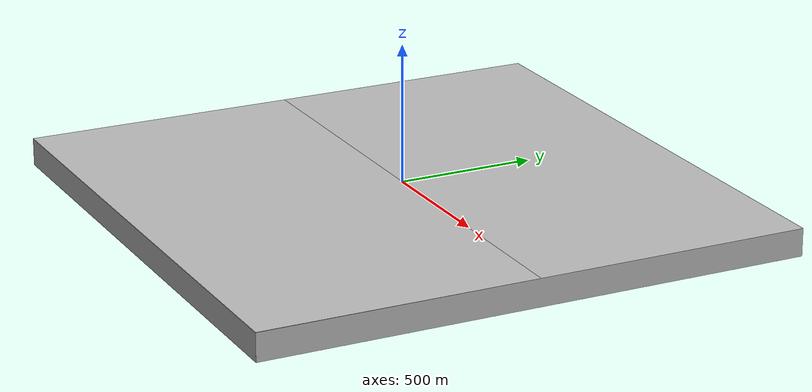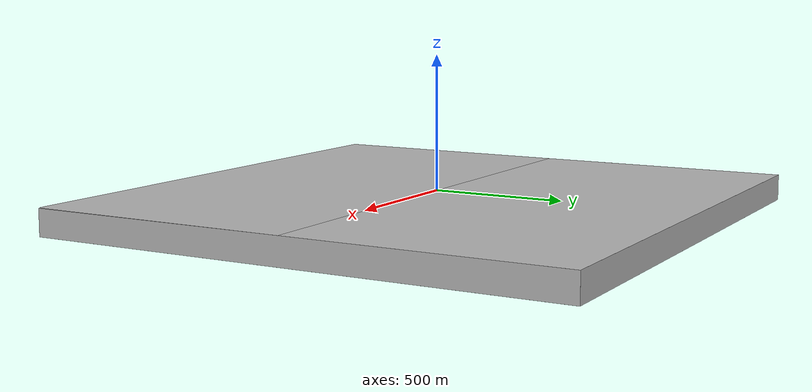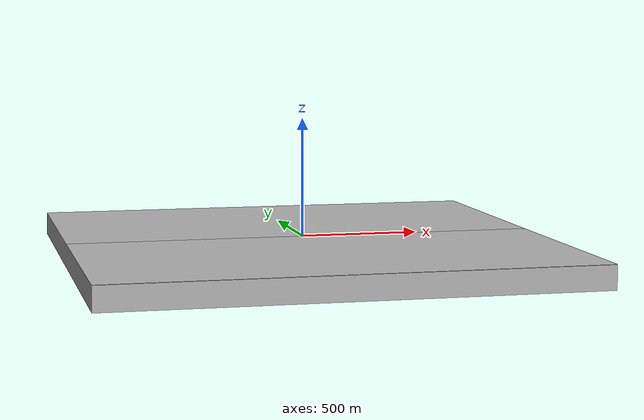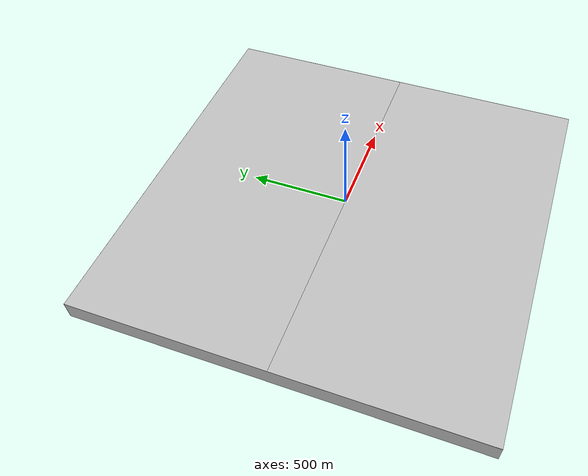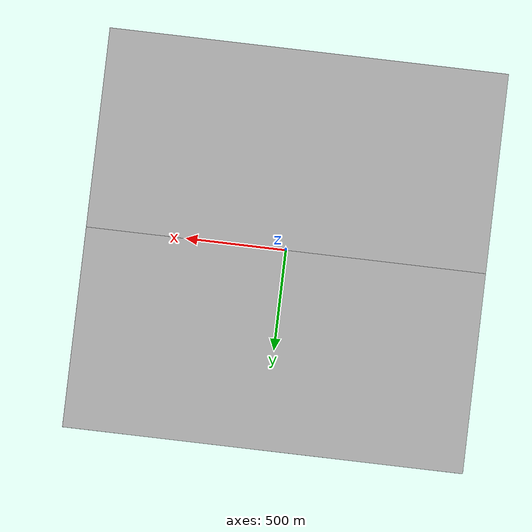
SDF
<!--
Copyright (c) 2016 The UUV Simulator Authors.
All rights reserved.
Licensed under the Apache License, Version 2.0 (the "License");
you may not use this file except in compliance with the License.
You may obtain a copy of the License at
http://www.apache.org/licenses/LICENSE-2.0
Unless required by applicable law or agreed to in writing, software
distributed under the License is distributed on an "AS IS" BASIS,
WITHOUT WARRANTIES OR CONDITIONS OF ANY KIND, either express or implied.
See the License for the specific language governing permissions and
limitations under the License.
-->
<?xml version="1.0" ?>
<sdf version="1.4">

<model name="ocean">
  <static>true</static>
  <link name="ocean_link">

  <visual name="ocean_surface">
    <pose>0 0 0 0 0 0</pose>
    <geometry>
      <mesh>
        <uri>file://Media/models/sea_surface_1000m_x_1000m.dae</uri>
        <scale>2 2 2</scale>
      </mesh>
    </geometry>
    <material>
      <script>
        <uri>file://Media/materials/scripts/waves.material</uri>
        <name>UUVSimulator/SimpleWaves</name>
      </script>
    </material>
  </visual>

  <visual name="ocean_below">
    <pose>0 0 0 3.14 0 0</pose>
    <geometry>
      <mesh>
        <uri>file://Media/models/sea_surface_1000m_x_1000m.dae</uri>
        <scale>2 2 2</scale>
      </mesh>
    </geometry>
    <material>
      <script>
        <uri>file://Media/materials/scripts/water.material</uri>
        <name>UUVSimulator/StaticWater</name>
      </script>
    </material>
  </visual>

  <visual name="seafloor">
    <cast_shadows>false</cast_shadows>
    <pose>0 0 -100 0 0 0</pose>
    <geometry>
      <box>
        <size>2000 2000 .1</size>
      </box>
    </geometry>
    <material>
      <script>
        <uri>file://Media/materials/scripts/sand.material</uri>
        <name>UUVSimulator/SandAndStones</name>
      </script>
    </material>
  </visual>

  <collision name="seafloor">
    <pose>0 0 -100 0 0 0</pose>
    <geometry>
      <box>
        <size>2000 2000 .1</size>
      </box>
    </geometry>
  </collision>

  <visual name="north">
    <pose>1000 0 -50 0 -1.5708 0</pose>
    <geometry><plane><normal>0 0 1</normal><size>100 2000</size></plane></geometry>
    <material>
      <script>
        <uri>file://Media/materials/scripts/water.material</uri>
        <name>UUVSimulator/SeaWall</name>
      </script>
    </material>
  </visual>

  <visual name="south">
    <pose>-1000 0 -50 0 1.5708 0</pose>
    <geometry><plane><normal>0 0 1</normal><size>100 2000</size></plane></geometry>
    <material>
      <script>
        <uri>file://Media/materials/scripts/water.material</uri>
        <name>UUVSimulator/SeaWall</name>
      </script>
    </material>
  </visual>

  <visual name="west">
    <pose>0 1000 -50 1.5708 0 0</pose>
    <geometry><plane><normal>0 0 1</normal><size>2000 100</size></plane></geometry>
    <material>
      <script>
        <uri>file://Media/materials/scripts/water.material</uri>
        <name>UUVSimulator/SeaWall</name>
      </script>
    </material>
  </visual>

  <visual name="east">
    <pose>0 -1000 -50 -1.5708 0 0</pose>
    <geometry><plane><normal>0 0 1</normal><size>2000 100</size></plane></geometry>
    <material>
      <script>
        <uri>file://Media/materials/scripts/water.material</uri>
        <name>UUVSimulator/SeaWall</name>
      </script>
    </material>
  </visual>
  </link>
</model>
</sdf>
